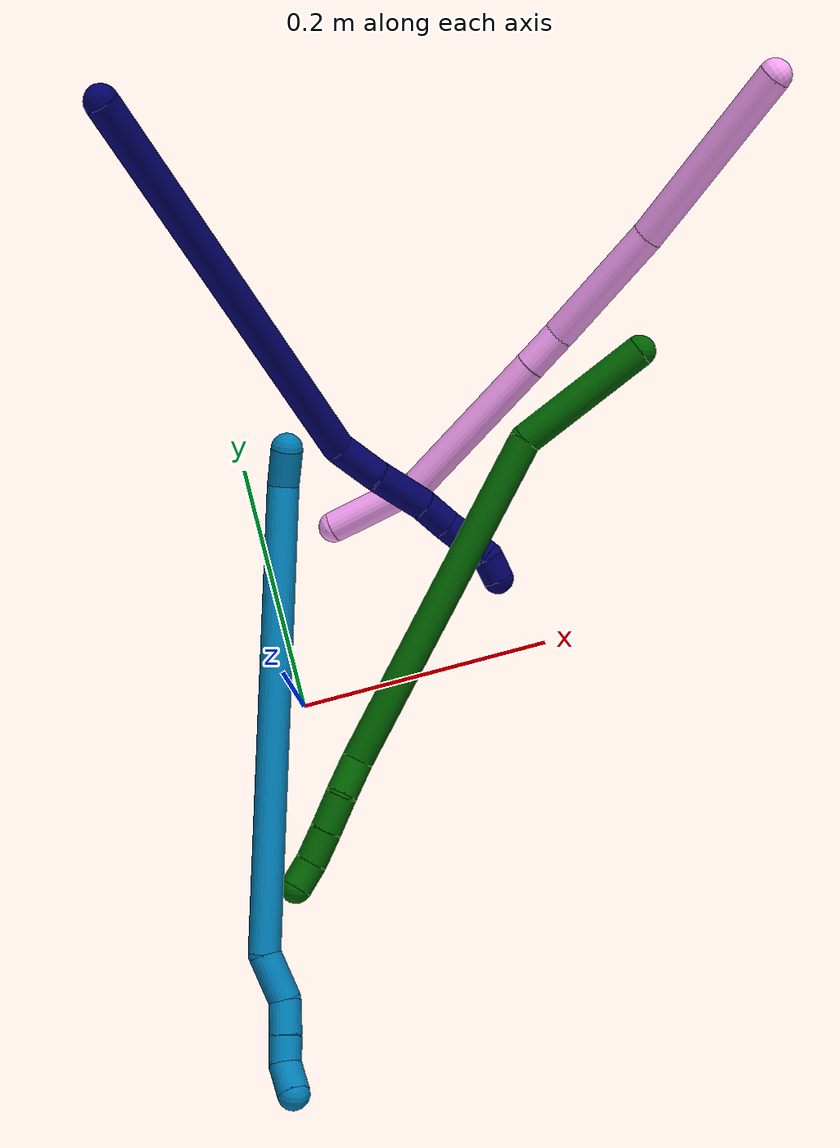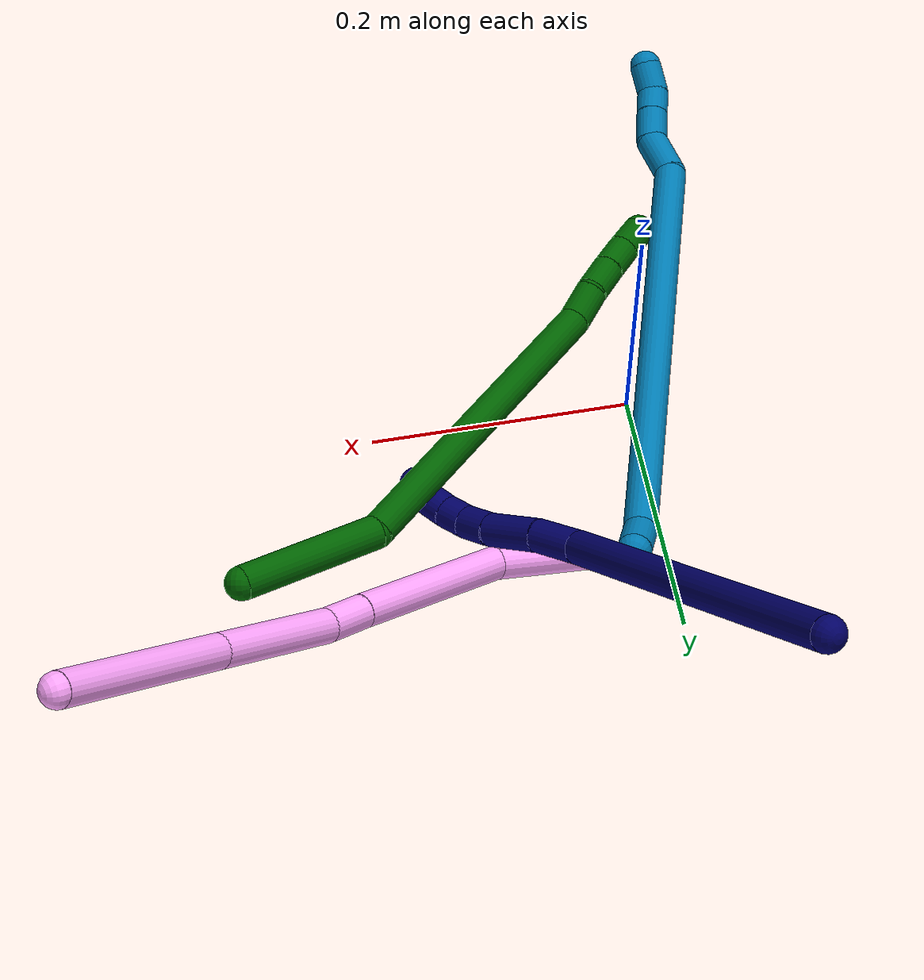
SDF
<sdf version="1.7">
 <world name="default">
  <model name="4">
   <static>0</static>
   <link name="4">
    <collision name="collision-cylinder-e_1_1_4">
     <pose>-0.022767 0.021019 -0.068619 -2.84436 -0.307202 1.60427</pose>
     <geometry><cylinder><radius>0.0125</radius><length>0.150582</length></cylinder></geometry>
     <surface>
      <friction><ode><mu>1.16</mu><mu2>1.16</mu2><slip1>0</slip1><slip2>0</slip2></ode></friction>
      <contact><ode><kp>1e+06</kp><kd>1</kd><max_vel>0</max_vel><min_depth>0.001</min_depth></ode></contact>
     </surface>
    </collision>
    <visual name="visual-cylinder-e_1_1_4">
     <pose>-0.022767 0.021019 -0.068619 -2.84436 -0.307202 1.60427</pose>
     <geometry><cylinder><radius>0.0125</radius><length>0.150582</length></cylinder></geometry>
     <material><ambient>1 0.65098 0.996078 1</ambient></material>
    </visual>
    <collision name="collision-cylinder-e_2_4_5">
     <pose>-0.059287 0.05369 -0.186551 -2.90955 -0.265015 1.70465</pose>
     <geometry><cylinder><radius>0.0125</radius><length>0.105007</length></cylinder></geometry>
     <surface>
      <friction><ode><mu>1.16</mu><mu2>1.16</mu2><slip1>0</slip1><slip2>0</slip2></ode></friction>
      <contact><ode><kp>1e+06</kp><kd>1</kd><max_vel>0</max_vel><min_depth>0.001</min_depth></ode></contact>
     </surface>
    </collision>
    <visual name="visual-cylinder-e_2_4_5">
     <pose>-0.059287 0.05369 -0.186551 -2.90955 -0.265015 1.70465</pose>
     <geometry><cylinder><radius>0.0125</radius><length>0.105007</length></cylinder></geometry>
     <material><ambient>1 0.65098 0.996078 1</ambient></material>
    </visual>
    <collision name="collision-cylinder-e_3_5_6">
     <pose>-0.074493 0.068548 -0.252208 -2.94792 -0.087101 0.843399</pose>
     <geometry><cylinder><radius>0.0125</radius><length>0.033439</length></cylinder></geometry>
     <surface>
      <friction><ode><mu>1.16</mu><mu2>1.16</mu2><slip1>0</slip1><slip2>0</slip2></ode></friction>
      <contact><ode><kp>1e+06</kp><kd>1</kd><max_vel>0</max_vel><min_depth>0.001</min_depth></ode></contact>
     </surface>
    </collision>
    <visual name="visual-cylinder-e_3_5_6">
     <pose>-0.074493 0.068548 -0.252208 -2.94792 -0.087101 0.843399</pose>
     <geometry><cylinder><radius>0.0125</radius><length>0.033439</length></cylinder></geometry>
     <material><ambient>1 0.65098 0.996078 1</ambient></material>
    </visual>
    <collision name="collision-cylinder-e_4_6_7">
     <pose>-0.084112 0.084422 -0.333823 -2.94989 -0.122189 1.13325</pose>
     <geometry><cylinder><radius>0.0125</radius><length>0.133976</length></cylinder></geometry>
     <surface>
      <friction><ode><mu>1.16</mu><mu2>1.16</mu2><slip1>0</slip1><slip2>0</slip2></ode></friction>
      <contact><ode><kp>1e+06</kp><kd>1</kd><max_vel>0</max_vel><min_depth>0.001</min_depth></ode></contact>
     </surface>
    </collision>
    <visual name="visual-cylinder-e_4_6_7">
     <pose>-0.084112 0.084422 -0.333823 -2.94989 -0.122189 1.13325</pose>
     <geometry><cylinder><radius>0.0125</radius><length>0.133976</length></cylinder></geometry>
     <material><ambient>1 0.65098 0.996078 1</ambient></material>
    </visual>
    <collision name="collision-cylinder-e_5_7_2">
     <pose>-0.096313 0.091155 -0.436917 2.98595 -0.105029 -1.18623</pose>
     <geometry><cylinder><radius>0.0125</radius><length>0.076996</length></cylinder></geometry>
     <surface>
      <friction><ode><mu>1.16</mu><mu2>1.16</mu2><slip1>0</slip1><slip2>0</slip2></ode></friction>
      <contact><ode><kp>1e+06</kp><kd>1</kd><max_vel>0</max_vel><min_depth>0.001</min_depth></ode></contact>
     </surface>
    </collision>
    <visual name="visual-cylinder-e_5_7_2">
     <pose>-0.096313 0.091155 -0.436917 2.98595 -0.105029 -1.18623</pose>
     <geometry><cylinder><radius>0.0125</radius><length>0.076996</length></cylinder></geometry>
     <material><ambient>1 0.65098 0.996078 1</ambient></material>
    </visual>
    <collision name="collision-sphere-2">
     <pose>-0.100349 0.085221 -0.47474 0 -0 0</pose>
     <geometry><sphere><radius>0.0125</radius></sphere></geometry>
     <surface>
      <friction><ode><mu>1.16</mu><mu2>1.16</mu2><slip1>0</slip1><slip2>0</slip2></ode></friction>
      <contact><ode><kp>1e+06</kp><kd>1</kd><max_vel>0</max_vel><min_depth>0.001</min_depth></ode></contact>
     </surface>
    </collision>
    <visual name="visual-sphere-2">
     <pose>-0.100349 0.085221 -0.47474 0 -0 0</pose>
     <geometry><sphere><radius>0.0125</radius></sphere></geometry>
     <material><ambient>1 0.65098 0.996078 1</ambient></material>
    </visual>
    <collision name="collision-sphere-7">
     <pose>-0.092277 0.09709 -0.399094 0 -0 0</pose>
     <geometry><sphere><radius>0.0125</radius></sphere></geometry>
     <surface>
      <friction><ode><mu>1.16</mu><mu2>1.16</mu2><slip1>0</slip1><slip2>0</slip2></ode></friction>
      <contact><ode><kp>1e+06</kp><kd>1</kd><max_vel>0</max_vel><min_depth>0.001</min_depth></ode></contact>
     </surface>
    </collision>
    <visual name="visual-sphere-7">
     <pose>-0.092277 0.09709 -0.399094 0 -0 0</pose>
     <geometry><sphere><radius>0.0125</radius></sphere></geometry>
     <material><ambient>1 0.65098 0.996078 1</ambient></material>
    </visual>
    <collision name="collision-sphere-6">
     <pose>-0.075948 0.071754 -0.268553 0 -0 0</pose>
     <geometry><sphere><radius>0.0125</radius></sphere></geometry>
     <surface>
      <friction><ode><mu>1.16</mu><mu2>1.16</mu2><slip1>0</slip1><slip2>0</slip2></ode></friction>
      <contact><ode><kp>1e+06</kp><kd>1</kd><max_vel>0</max_vel><min_depth>0.001</min_depth></ode></contact>
     </surface>
    </collision>
    <visual name="visual-sphere-6">
     <pose>-0.075948 0.071754 -0.268553 0 -0 0</pose>
     <geometry><sphere><radius>0.0125</radius></sphere></geometry>
     <material><ambient>1 0.65098 0.996078 1</ambient></material>
    </visual>
    <collision name="collision-sphere-5">
     <pose>-0.073039 0.065342 -0.235863 0 -0 0</pose>
     <geometry><sphere><radius>0.0125</radius></sphere></geometry>
     <surface>
      <friction><ode><mu>1.16</mu><mu2>1.16</mu2><slip1>0</slip1><slip2>0</slip2></ode></friction>
      <contact><ode><kp>1e+06</kp><kd>1</kd><max_vel>0</max_vel><min_depth>0.001</min_depth></ode></contact>
     </surface>
    </collision>
    <visual name="visual-sphere-5">
     <pose>-0.073039 0.065342 -0.235863 0 -0 0</pose>
     <geometry><sphere><radius>0.0125</radius></sphere></geometry>
     <material><ambient>1 0.65098 0.996078 1</ambient></material>
    </visual>
    <collision name="collision-sphere-1">
     <geometry><sphere><radius>0.0125</radius></sphere></geometry>
     <surface>
      <friction><ode><mu>1.16</mu><mu2>1.16</mu2><slip1>0</slip1><slip2>0</slip2></ode></friction>
      <contact><ode><kp>1e+06</kp><kd>1</kd><max_vel>0</max_vel><min_depth>0.001</min_depth></ode></contact>
     </surface>
    </collision>
    <visual name="visual-sphere-1">
     <geometry><sphere><radius>0.0125</radius></sphere></geometry>
     <material><ambient>1 0.65098 0.996078 1</ambient></material>
    </visual>
    <collision name="collision-sphere-4">
     <pose>-0.045535 0.042038 -0.137239 0 -0 0</pose>
     <geometry><sphere><radius>0.0125</radius></sphere></geometry>
     <surface>
      <friction><ode><mu>1.16</mu><mu2>1.16</mu2><slip1>0</slip1><slip2>0</slip2></ode></friction>
      <contact><ode><kp>1e+06</kp><kd>1</kd><max_vel>0</max_vel><min_depth>0.001</min_depth></ode></contact>
     </surface>
    </collision>
    <visual name="visual-sphere-4">
     <pose>-0.045535 0.042038 -0.137239 0 -0 0</pose>
     <geometry><sphere><radius>0.0125</radius></sphere></geometry>
     <material><ambient>1 0.65098 0.996078 1</ambient></material>
    </visual>
    <inertial>
     <pose>-0.061659 0.058848 -0.233441 0 -0 0</pose>
     <mass>0.5</mass>
     <inertia><ixx>0.000598</ixx><ixy>0</ixy><ixz>0</ixz><iyy>0.000485</iyy><iyz>0</iyz><izz>-3e-05</izz></inertia>
    </inertial>
   </link>
   <pose>0.445489 0.318256 0.255814 -0.868593 -1.14702 -1.89393</pose>
  </model>
  <model name="6">
   <static>0</static>
   <link name="6">
    <collision name="collision-cylinder-e_1_1_4">
     <pose>-0.011804 -0.03855 -0.037689 2.3449 -0.21555 -0.503274</pose>
     <geometry><cylinder><radius>0.0125</radius><length>0.11038</length></cylinder></geometry>
     <surface>
      <friction><ode><mu>1.16</mu><mu2>1.16</mu2><slip1>0</slip1><slip2>0</slip2></ode></friction>
      <contact><ode><kp>1e+06</kp><kd>1</kd><max_vel>0</max_vel><min_depth>0.001</min_depth></ode></contact>
     </surface>
    </collision>
    <visual name="visual-cylinder-e_1_1_4">
     <pose>-0.011804 -0.03855 -0.037689 2.3449 -0.21555 -0.503274</pose>
     <geometry><cylinder><radius>0.0125</radius><length>0.11038</length></cylinder></geometry>
     <material><ambient>0 0.392157 0.003922 1</ambient></material>
    </visual>
    <collision name="collision-cylinder-e_2_4_5">
     <pose>-0.088472 -0.191096 -0.124629 1.97862 -0.481355 -0.714736</pose>
     <geometry><cylinder><radius>0.0125</radius><length>0.2802</length></cylinder></geometry>
     <surface>
      <friction><ode><mu>1.16</mu><mu2>1.16</mu2><slip1>0</slip1><slip2>0</slip2></ode></friction>
      <contact><ode><kp>1e+06</kp><kd>1</kd><max_vel>0</max_vel><min_depth>0.001</min_depth></ode></contact>
     </surface>
    </collision>
    <visual name="visual-cylinder-e_2_4_5">
     <pose>-0.088472 -0.191096 -0.124629 1.97862 -0.481355 -0.714736</pose>
     <geometry><cylinder><radius>0.0125</radius><length>0.2802</length></cylinder></geometry>
     <material><ambient>0 0.392157 0.003922 1</ambient></material>
    </visual>
    <collision name="collision-cylinder-e_3_5_6">
     <pose>-0.163983 -0.314192 -0.179346 2.11172 -0.786889 -1.26579</pose>
     <geometry><cylinder><radius>0.0125</radius><length>0.03007</length></cylinder></geometry>
     <surface>
      <friction><ode><mu>1.16</mu><mu2>1.16</mu2><slip1>0</slip1><slip2>0</slip2></ode></friction>
      <contact><ode><kp>1e+06</kp><kd>1</kd><max_vel>0</max_vel><min_depth>0.001</min_depth></ode></contact>
     </surface>
    </collision>
    <visual name="visual-cylinder-e_3_5_6">
     <pose>-0.163983 -0.314192 -0.179346 2.11172 -0.786889 -1.26579</pose>
     <geometry><cylinder><radius>0.0125</radius><length>0.03007</length></cylinder></geometry>
     <material><ambient>0 0.392157 0.003922 1</ambient></material>
    </visual>
    <collision name="collision-cylinder-e_4_6_7">
     <pose>-0.182703 -0.334806 -0.189257 1.93919 -0.579247 -0.819725</pose>
     <geometry><cylinder><radius>0.0125</radius><length>0.029495</length></cylinder></geometry>
     <surface>
      <friction><ode><mu>1.16</mu><mu2>1.16</mu2><slip1>0</slip1><slip2>0</slip2></ode></friction>
      <contact><ode><kp>1e+06</kp><kd>1</kd><max_vel>0</max_vel><min_depth>0.001</min_depth></ode></contact>
     </surface>
    </collision>
    <visual name="visual-cylinder-e_4_6_7">
     <pose>-0.182703 -0.334806 -0.189257 1.93919 -0.579247 -0.819725</pose>
     <geometry><cylinder><radius>0.0125</radius><length>0.029495</length></cylinder></geometry>
     <material><ambient>0 0.392157 0.003922 1</ambient></material>
    </visual>
    <collision name="collision-cylinder-e_5_7_8">
     <pose>-0.198038 -0.357061 -0.19805 1.95546 -0.559821 -0.806268</pose>
     <geometry><cylinder><radius>0.0125</radius><length>0.027351</length></cylinder></geometry>
     <surface>
      <friction><ode><mu>1.16</mu><mu2>1.16</mu2><slip1>0</slip1><slip2>0</slip2></ode></friction>
      <contact><ode><kp>1e+06</kp><kd>1</kd><max_vel>0</max_vel><min_depth>0.001</min_depth></ode></contact>
     </surface>
    </collision>
    <visual name="visual-cylinder-e_5_7_8">
     <pose>-0.198038 -0.357061 -0.19805 1.95546 -0.559821 -0.806268</pose>
     <geometry><cylinder><radius>0.0125</radius><length>0.027351</length></cylinder></geometry>
     <material><ambient>0 0.392157 0.003922 1</ambient></material>
    </visual>
    <collision name="collision-cylinder-e_6_8_2">
     <pose>-0.212032 -0.375293 -0.207416 2.16098 -0.641353 -1.11322</pose>
     <geometry><cylinder><radius>0.0125</radius><length>0.022504</length></cylinder></geometry>
     <surface>
      <friction><ode><mu>1.16</mu><mu2>1.16</mu2><slip1>0</slip1><slip2>0</slip2></ode></friction>
      <contact><ode><kp>1e+06</kp><kd>1</kd><max_vel>0</max_vel><min_depth>0.001</min_depth></ode></contact>
     </surface>
    </collision>
    <visual name="visual-cylinder-e_6_8_2">
     <pose>-0.212032 -0.375293 -0.207416 2.16098 -0.641353 -1.11322</pose>
     <geometry><cylinder><radius>0.0125</radius><length>0.022504</length></cylinder></geometry>
     <material><ambient>0 0.392157 0.003922 1</ambient></material>
    </visual>
    <collision name="collision-sphere-2">
     <pose>-0.218764 -0.382784 -0.212434 0 -0 0</pose>
     <geometry><sphere><radius>0.0125</radius></sphere></geometry>
     <surface>
      <friction><ode><mu>1.16</mu><mu2>1.16</mu2><slip1>0</slip1><slip2>0</slip2></ode></friction>
      <contact><ode><kp>1e+06</kp><kd>1</kd><max_vel>0</max_vel><min_depth>0.001</min_depth></ode></contact>
     </surface>
    </collision>
    <visual name="visual-sphere-2">
     <pose>-0.218764 -0.382784 -0.212434 0 -0 0</pose>
     <geometry><sphere><radius>0.0125</radius></sphere></geometry>
     <material><ambient>0 0.392157 0.003922 1</ambient></material>
    </visual>
    <collision name="collision-sphere-4">
     <pose>-0.023609 -0.077101 -0.075378 0 -0 0</pose>
     <geometry><sphere><radius>0.0125</radius></sphere></geometry>
     <surface>
      <friction><ode><mu>1.16</mu><mu2>1.16</mu2><slip1>0</slip1><slip2>0</slip2></ode></friction>
      <contact><ode><kp>1e+06</kp><kd>1</kd><max_vel>0</max_vel><min_depth>0.001</min_depth></ode></contact>
     </surface>
    </collision>
    <visual name="visual-sphere-4">
     <pose>-0.023609 -0.077101 -0.075378 0 -0 0</pose>
     <geometry><sphere><radius>0.0125</radius></sphere></geometry>
     <material><ambient>0 0.392157 0.003922 1</ambient></material>
    </visual>
    <collision name="collision-sphere-1">
     <geometry><sphere><radius>0.0125</radius></sphere></geometry>
     <surface>
      <friction><ode><mu>1.16</mu><mu2>1.16</mu2><slip1>0</slip1><slip2>0</slip2></ode></friction>
      <contact><ode><kp>1e+06</kp><kd>1</kd><max_vel>0</max_vel><min_depth>0.001</min_depth></ode></contact>
     </surface>
    </collision>
    <visual name="visual-sphere-1">
     <geometry><sphere><radius>0.0125</radius></sphere></geometry>
     <material><ambient>0 0.392157 0.003922 1</ambient></material>
    </visual>
    <collision name="collision-sphere-8">
     <pose>-0.2053 -0.367802 -0.202398 0 -0 0</pose>
     <geometry><sphere><radius>0.0125</radius></sphere></geometry>
     <surface>
      <friction><ode><mu>1.16</mu><mu2>1.16</mu2><slip1>0</slip1><slip2>0</slip2></ode></friction>
      <contact><ode><kp>1e+06</kp><kd>1</kd><max_vel>0</max_vel><min_depth>0.001</min_depth></ode></contact>
     </surface>
    </collision>
    <visual name="visual-sphere-8">
     <pose>-0.2053 -0.367802 -0.202398 0 -0 0</pose>
     <geometry><sphere><radius>0.0125</radius></sphere></geometry>
     <material><ambient>0 0.392157 0.003922 1</ambient></material>
    </visual>
    <collision name="collision-sphere-5">
     <pose>-0.153336 -0.305092 -0.17388 0 -0 0</pose>
     <geometry><sphere><radius>0.0125</radius></sphere></geometry>
     <surface>
      <friction><ode><mu>1.16</mu><mu2>1.16</mu2><slip1>0</slip1><slip2>0</slip2></ode></friction>
      <contact><ode><kp>1e+06</kp><kd>1</kd><max_vel>0</max_vel><min_depth>0.001</min_depth></ode></contact>
     </surface>
    </collision>
    <visual name="visual-sphere-5">
     <pose>-0.153336 -0.305092 -0.17388 0 -0 0</pose>
     <geometry><sphere><radius>0.0125</radius></sphere></geometry>
     <material><ambient>0 0.392157 0.003922 1</ambient></material>
    </visual>
    <collision name="collision-sphere-6">
     <pose>-0.17463 -0.323292 -0.184812 0 -0 0</pose>
     <geometry><sphere><radius>0.0125</radius></sphere></geometry>
     <surface>
      <friction><ode><mu>1.16</mu><mu2>1.16</mu2><slip1>0</slip1><slip2>0</slip2></ode></friction>
      <contact><ode><kp>1e+06</kp><kd>1</kd><max_vel>0</max_vel><min_depth>0.001</min_depth></ode></contact>
     </surface>
    </collision>
    <visual name="visual-sphere-6">
     <pose>-0.17463 -0.323292 -0.184812 0 -0 0</pose>
     <geometry><sphere><radius>0.0125</radius></sphere></geometry>
     <material><ambient>0 0.392157 0.003922 1</ambient></material>
    </visual>
    <collision name="collision-sphere-7">
     <pose>-0.190775 -0.34632 -0.193701 0 -0 0</pose>
     <geometry><sphere><radius>0.0125</radius></sphere></geometry>
     <surface>
      <friction><ode><mu>1.16</mu><mu2>1.16</mu2><slip1>0</slip1><slip2>0</slip2></ode></friction>
      <contact><ode><kp>1e+06</kp><kd>1</kd><max_vel>0</max_vel><min_depth>0.001</min_depth></ode></contact>
     </surface>
    </collision>
    <visual name="visual-sphere-7">
     <pose>-0.190775 -0.34632 -0.193701 0 -0 0</pose>
     <geometry><sphere><radius>0.0125</radius></sphere></geometry>
     <material><ambient>0 0.392157 0.003922 1</ambient></material>
    </visual>
    <inertial>
     <pose>-0.093202 -0.19067 -0.120282 0 -0 0</pose>
     <mass>0.5</mass>
     <inertia>
      <ixx>0.000188</ixx>
      <ixy>0</ixy>
      <ixz>0</ixz>
      <iyy>-0.001262</iyy>
      <iyz>0</iyz>
      <izz>0.002459</izz>
     </inertia>
    </inertial>
   </link>
   <pose>0.319291 0.18223 0.1238 1.88042 0.701354 1.45619</pose>
  </model>
  <model name="7">
   <static>0</static>
   <link name="7">
    <collision name="collision-cylinder-e_1_1_4">
     <pose>0.010191 0.014832 -0.162413 -3.05052 0.062406 -1.20118</pose>
     <geometry><cylinder><radius>0.0125</radius><length>0.326813</length></cylinder></geometry>
     <surface>
      <friction><ode><mu>1.16</mu><mu2>1.16</mu2><slip1>0</slip1><slip2>0</slip2></ode></friction>
      <contact><ode><kp>1e+06</kp><kd>1</kd><max_vel>0</max_vel><min_depth>0.001</min_depth></ode></contact>
     </surface>
    </collision>
    <visual name="visual-cylinder-e_1_1_4">
     <pose>0.010191 0.014832 -0.162413 -3.05052 0.062406 -1.20118</pose>
     <geometry><cylinder><radius>0.0125</radius><length>0.326813</length></cylinder></geometry>
     <material><ambient>0.003922 0 0.403922 1</ambient></material>
    </visual>
    <collision name="collision-cylinder-e_2_4_5">
     <pose>0.022316 0.023924 -0.343249 2.83957 0.099904 0.634862</pose>
     <geometry><cylinder><radius>0.0125</radius><length>0.038786</length></cylinder></geometry>
     <surface>
      <friction><ode><mu>1.16</mu><mu2>1.16</mu2><slip1>0</slip1><slip2>0</slip2></ode></friction>
      <contact><ode><kp>1e+06</kp><kd>1</kd><max_vel>0</max_vel><min_depth>0.001</min_depth></ode></contact>
     </surface>
    </collision>
    <visual name="visual-cylinder-e_2_4_5">
     <pose>0.022316 0.023924 -0.343249 2.83957 0.099904 0.634862</pose>
     <geometry><cylinder><radius>0.0125</radius><length>0.038786</length></cylinder></geometry>
     <material><ambient>0.003922 0 0.403922 1</ambient></material>
    </visual>
    <collision name="collision-cylinder-e_3_5_6">
     <pose>0.029366 0.012216 -0.383271 2.872 0.224433 1.38664</pose>
     <geometry><cylinder><radius>0.0125</radius><length>0.045971</length></cylinder></geometry>
     <surface>
      <friction><ode><mu>1.16</mu><mu2>1.16</mu2><slip1>0</slip1><slip2>0</slip2></ode></friction>
      <contact><ode><kp>1e+06</kp><kd>1</kd><max_vel>0</max_vel><min_depth>0.001</min_depth></ode></contact>
     </surface>
    </collision>
    <visual name="visual-cylinder-e_3_5_6">
     <pose>0.029366 0.012216 -0.383271 2.872 0.224433 1.38664</pose>
     <geometry><cylinder><radius>0.0125</radius><length>0.045971</length></cylinder></geometry>
     <material><ambient>0.003922 0 0.403922 1</ambient></material>
    </visual>
    <collision name="collision-cylinder-e_4_6_7">
     <pose>0.035574 0.003378 -0.417913 2.92502 0.081669 0.718999</pose>
     <geometry><cylinder><radius>0.0125</radius><length>0.026798</length></cylinder></geometry>
     <surface>
      <friction><ode><mu>1.16</mu><mu2>1.16</mu2><slip1>0</slip1><slip2>0</slip2></ode></friction>
      <contact><ode><kp>1e+06</kp><kd>1</kd><max_vel>0</max_vel><min_depth>0.001</min_depth></ode></contact>
     </surface>
    </collision>
    <visual name="visual-cylinder-e_4_6_7">
     <pose>0.035574 0.003378 -0.417913 2.92502 0.081669 0.718999</pose>
     <geometry><cylinder><radius>0.0125</radius><length>0.026798</length></cylinder></geometry>
     <material><ambient>0.003922 0 0.403922 1</ambient></material>
    </visual>
    <collision name="collision-cylinder-e_5_7_8">
     <pose>0.036031 -0.003664 -0.440342 2.72332 -0.061846 -0.289452</pose>
     <geometry><cylinder><radius>0.0125</radius><length>0.020585</length></cylinder></geometry>
     <surface>
      <friction><ode><mu>1.16</mu><mu2>1.16</mu2><slip1>0</slip1><slip2>0</slip2></ode></friction>
      <contact><ode><kp>1e+06</kp><kd>1</kd><max_vel>0</max_vel><min_depth>0.001</min_depth></ode></contact>
     </surface>
    </collision>
    <visual name="visual-cylinder-e_5_7_8">
     <pose>0.036031 -0.003664 -0.440342 2.72332 -0.061846 -0.289452</pose>
     <geometry><cylinder><radius>0.0125</radius><length>0.020585</length></cylinder></geometry>
     <material><ambient>0.003922 0 0.403922 1</ambient></material>
    </visual>
    <collision name="collision-cylinder-e_6_8_9">
     <pose>0.033442 -0.013303 -0.458432 2.58077 -0.187798 -0.632079</pose>
     <geometry><cylinder><radius>0.0125</radius><length>0.020922</length></cylinder></geometry>
     <surface>
      <friction><ode><mu>1.16</mu><mu2>1.16</mu2><slip1>0</slip1><slip2>0</slip2></ode></friction>
      <contact><ode><kp>1e+06</kp><kd>1</kd><max_vel>0</max_vel><min_depth>0.001</min_depth></ode></contact>
     </surface>
    </collision>
    <visual name="visual-cylinder-e_6_8_9">
     <pose>0.033442 -0.013303 -0.458432 2.58077 -0.187798 -0.632079</pose>
     <geometry><cylinder><radius>0.0125</radius><length>0.020922</length></cylinder></geometry>
     <material><ambient>0.003922 0 0.403922 1</ambient></material>
    </visual>
    <collision name="collision-cylinder-e_7_9_2">
     <pose>0.028628 -0.019079 -0.476777 3.10951 -0.288317 -2.92146</pose>
     <geometry><cylinder><radius>0.0125</radius><length>0.020125</length></cylinder></geometry>
     <surface>
      <friction><ode><mu>1.16</mu><mu2>1.16</mu2><slip1>0</slip1><slip2>0</slip2></ode></friction>
      <contact><ode><kp>1e+06</kp><kd>1</kd><max_vel>0</max_vel><min_depth>0.001</min_depth></ode></contact>
     </surface>
    </collision>
    <visual name="visual-cylinder-e_7_9_2">
     <pose>0.028628 -0.019079 -0.476777 3.10951 -0.288317 -2.92146</pose>
     <geometry><cylinder><radius>0.0125</radius><length>0.020125</length></cylinder></geometry>
     <material><ambient>0.003922 0 0.403922 1</ambient></material>
    </visual>
    <collision name="collision-sphere-2">
     <pose>0.025767 -0.019388 -0.486419 0 -0 0</pose>
     <geometry><sphere><radius>0.0125</radius></sphere></geometry>
     <surface>
      <friction><ode><mu>1.16</mu><mu2>1.16</mu2><slip1>0</slip1><slip2>0</slip2></ode></friction>
      <contact><ode><kp>1e+06</kp><kd>1</kd><max_vel>0</max_vel><min_depth>0.001</min_depth></ode></contact>
     </surface>
    </collision>
    <visual name="visual-sphere-2">
     <pose>0.025767 -0.019388 -0.486419 0 -0 0</pose>
     <geometry><sphere><radius>0.0125</radius></sphere></geometry>
     <material><ambient>0.003922 0 0.403922 1</ambient></material>
    </visual>
    <collision name="collision-sphere-9">
     <pose>0.031489 -0.018769 -0.467135 0 -0 0</pose>
     <geometry><sphere><radius>0.0125</radius></sphere></geometry>
     <surface>
      <friction><ode><mu>1.16</mu><mu2>1.16</mu2><slip1>0</slip1><slip2>0</slip2></ode></friction>
      <contact><ode><kp>1e+06</kp><kd>1</kd><max_vel>0</max_vel><min_depth>0.001</min_depth></ode></contact>
     </surface>
    </collision>
    <visual name="visual-sphere-9">
     <pose>0.031489 -0.018769 -0.467135 0 -0 0</pose>
     <geometry><sphere><radius>0.0125</radius></sphere></geometry>
     <material><ambient>0.003922 0 0.403922 1</ambient></material>
    </visual>
    <collision name="collision-sphere-4">
     <pose>0.020382 0.029664 -0.324826 0 -0 0</pose>
     <geometry><sphere><radius>0.0125</radius></sphere></geometry>
     <surface>
      <friction><ode><mu>1.16</mu><mu2>1.16</mu2><slip1>0</slip1><slip2>0</slip2></ode></friction>
      <contact><ode><kp>1e+06</kp><kd>1</kd><max_vel>0</max_vel><min_depth>0.001</min_depth></ode></contact>
     </surface>
    </collision>
    <visual name="visual-sphere-4">
     <pose>0.020382 0.029664 -0.324826 0 -0 0</pose>
     <geometry><sphere><radius>0.0125</radius></sphere></geometry>
     <material><ambient>0.003922 0 0.403922 1</ambient></material>
    </visual>
    <collision name="collision-sphere-1">
     <geometry><sphere><radius>0.0125</radius></sphere></geometry>
     <surface>
      <friction><ode><mu>1.16</mu><mu2>1.16</mu2><slip1>0</slip1><slip2>0</slip2></ode></friction>
      <contact><ode><kp>1e+06</kp><kd>1</kd><max_vel>0</max_vel><min_depth>0.001</min_depth></ode></contact>
     </surface>
    </collision>
    <visual name="visual-sphere-1">
     <geometry><sphere><radius>0.0125</radius></sphere></geometry>
     <material><ambient>0.003922 0 0.403922 1</ambient></material>
    </visual>
    <collision name="collision-sphere-8">
     <pose>0.035395 -0.007837 -0.449729 0 -0 0</pose>
     <geometry><sphere><radius>0.0125</radius></sphere></geometry>
     <surface>
      <friction><ode><mu>1.16</mu><mu2>1.16</mu2><slip1>0</slip1><slip2>0</slip2></ode></friction>
      <contact><ode><kp>1e+06</kp><kd>1</kd><max_vel>0</max_vel><min_depth>0.001</min_depth></ode></contact>
     </surface>
    </collision>
    <visual name="visual-sphere-8">
     <pose>0.035395 -0.007837 -0.449729 0 -0 0</pose>
     <geometry><sphere><radius>0.0125</radius></sphere></geometry>
     <material><ambient>0.003922 0 0.403922 1</ambient></material>
    </visual>
    <collision name="collision-sphere-5">
     <pose>0.02425 0.018184 -0.361672 0 -0 0</pose>
     <geometry><sphere><radius>0.0125</radius></sphere></geometry>
     <surface>
      <friction><ode><mu>1.16</mu><mu2>1.16</mu2><slip1>0</slip1><slip2>0</slip2></ode></friction>
      <contact><ode><kp>1e+06</kp><kd>1</kd><max_vel>0</max_vel><min_depth>0.001</min_depth></ode></contact>
     </surface>
    </collision>
    <visual name="visual-sphere-5">
     <pose>0.02425 0.018184 -0.361672 0 -0 0</pose>
     <geometry><sphere><radius>0.0125</radius></sphere></geometry>
     <material><ambient>0.003922 0 0.403922 1</ambient></material>
    </visual>
    <collision name="collision-sphere-6">
     <pose>0.034481 0.006248 -0.404871 0 -0 0</pose>
     <geometry><sphere><radius>0.0125</radius></sphere></geometry>
     <surface>
      <friction><ode><mu>1.16</mu><mu2>1.16</mu2><slip1>0</slip1><slip2>0</slip2></ode></friction>
      <contact><ode><kp>1e+06</kp><kd>1</kd><max_vel>0</max_vel><min_depth>0.001</min_depth></ode></contact>
     </surface>
    </collision>
    <visual name="visual-sphere-6">
     <pose>0.034481 0.006248 -0.404871 0 -0 0</pose>
     <geometry><sphere><radius>0.0125</radius></sphere></geometry>
     <material><ambient>0.003922 0 0.403922 1</ambient></material>
    </visual>
    <collision name="collision-sphere-7">
     <pose>0.036667 0.000508 -0.430955 0 -0 0</pose>
     <geometry><sphere><radius>0.0125</radius></sphere></geometry>
     <surface>
      <friction><ode><mu>1.16</mu><mu2>1.16</mu2><slip1>0</slip1><slip2>0</slip2></ode></friction>
      <contact><ode><kp>1e+06</kp><kd>1</kd><max_vel>0</max_vel><min_depth>0.001</min_depth></ode></contact>
     </surface>
    </collision>
    <visual name="visual-sphere-7">
     <pose>0.036667 0.000508 -0.430955 0 -0 0</pose>
     <geometry><sphere><radius>0.0125</radius></sphere></geometry>
     <material><ambient>0.003922 0 0.403922 1</ambient></material>
    </visual>
    <inertial>
     <pose>0.017034 0.011379 -0.246922 0 -0 0</pose>
     <mass>0.5</mass>
     <inertia>
      <ixx>-0.00164</ixx>
      <ixy>0</ixy>
      <ixz>0</ixz>
      <iyy>-0.003752</iyy>
      <iyz>0</iyz>
      <izz>-0.000481</izz>
     </inertia>
    </inertial>
   </link>
   <pose>-0.019214 0.394994 0.313899 -0.781427 0.575831 0.943368</pose>
  </model>
  <model name="9">
   <static>0</static>
   <link name="9">
    <collision name="collision-cylinder-e_1_1_4">
     <pose>7.9e-05 0.000102 -0.014999 -3.13482 0.005255 -1.31982</pose>
     <geometry><cylinder><radius>0.0125</radius><length>0.029999</length></cylinder></geometry>
     <surface>
      <friction><ode><mu>1.16</mu><mu2>1.16</mu2><slip1>0</slip1><slip2>0</slip2></ode></friction>
      <contact><ode><kp>1e+06</kp><kd>1</kd><max_vel>0</max_vel><min_depth>0.001</min_depth></ode></contact>
     </surface>
    </collision>
    <visual name="visual-cylinder-e_1_1_4">
     <pose>7.9e-05 0.000102 -0.014999 -3.13482 0.005255 -1.31982</pose>
     <geometry><cylinder><radius>0.0125</radius><length>0.029999</length></cylinder></geometry>
     <material><ambient>0 0.490196 0.709804 1</ambient></material>
    </visual>
    <collision name="collision-cylinder-e_2_4_5">
     <pose>0.021471 -0.073641 -0.192643 2.7154 0.118757 0.536247</pose>
     <geometry><cylinder><radius>0.0125</radius><length>0.359781</length></cylinder></geometry>
     <surface>
      <friction><ode><mu>1.16</mu><mu2>1.16</mu2><slip1>0</slip1><slip2>0</slip2></ode></friction>
      <contact><ode><kp>1e+06</kp><kd>1</kd><max_vel>0</max_vel><min_depth>0.001</min_depth></ode></contact>
     </surface>
    </collision>
    <visual name="visual-cylinder-e_2_4_5">
     <pose>0.021471 -0.073641 -0.192643 2.7154 0.118757 0.536247</pose>
     <geometry><cylinder><radius>0.0125</radius><length>0.359781</length></cylinder></geometry>
     <material><ambient>0 0.490196 0.709804 1</ambient></material>
    </visual>
    <collision name="collision-cylinder-e_3_5_6">
     <pose>0.053268 -0.153972 -0.369965 2.72545 0.57869 1.90786</pose>
     <geometry><cylinder><radius>0.0125</radius><length>0.038337</length></cylinder></geometry>
     <surface>
      <friction><ode><mu>1.16</mu><mu2>1.16</mu2><slip1>0</slip1><slip2>0</slip2></ode></friction>
      <contact><ode><kp>1e+06</kp><kd>1</kd><max_vel>0</max_vel><min_depth>0.001</min_depth></ode></contact>
     </surface>
    </collision>
    <visual name="visual-cylinder-e_3_5_6">
     <pose>0.053268 -0.153972 -0.369965 2.72545 0.57869 1.90786</pose>
     <geometry><cylinder><radius>0.0125</radius><length>0.038337</length></cylinder></geometry>
     <material><ambient>0 0.490196 0.709804 1</ambient></material>
    </visual>
    <collision name="collision-cylinder-e_4_6_7">
     <pose>0.066283 -0.168188 -0.395224 2.51067 0.190835 0.570527</pose>
     <geometry><cylinder><radius>0.0125</radius><length>0.026691</length></cylinder></geometry>
     <surface>
      <friction><ode><mu>1.16</mu><mu2>1.16</mu2><slip1>0</slip1><slip2>0</slip2></ode></friction>
      <contact><ode><kp>1e+06</kp><kd>1</kd><max_vel>0</max_vel><min_depth>0.001</min_depth></ode></contact>
     </surface>
    </collision>
    <visual name="visual-cylinder-e_4_6_7">
     <pose>0.066283 -0.168188 -0.395224 2.51067 0.190835 0.570527</pose>
     <geometry><cylinder><radius>0.0125</radius><length>0.026691</length></cylinder></geometry>
     <material><ambient>0 0.490196 0.709804 1</ambient></material>
    </visual>
    <collision name="collision-cylinder-e_5_7_8">
     <pose>0.070489 -0.181848 -0.414392 2.53726 0.159176 0.500983</pose>
     <geometry><cylinder><radius>0.0125</radius><length>0.021138</length></cylinder></geometry>
     <surface>
      <friction><ode><mu>1.16</mu><mu2>1.16</mu2><slip1>0</slip1><slip2>0</slip2></ode></friction>
      <contact><ode><kp>1e+06</kp><kd>1</kd><max_vel>0</max_vel><min_depth>0.001</min_depth></ode></contact>
     </surface>
    </collision>
    <visual name="visual-cylinder-e_5_7_8">
     <pose>0.070489 -0.181848 -0.414392 2.53726 0.159176 0.500983</pose>
     <geometry><cylinder><radius>0.0125</radius><length>0.021138</length></cylinder></geometry>
     <material><ambient>0 0.490196 0.709804 1</ambient></material>
    </visual>
    <collision name="collision-cylinder-e_6_8_2">
     <pose>0.07741 -0.196622 -0.429217 2.18506 0.451257 0.833653</pose>
     <geometry><cylinder><radius>0.0125</radius><length>0.024054</length></cylinder></geometry>
     <surface>
      <friction><ode><mu>1.16</mu><mu2>1.16</mu2><slip1>0</slip1><slip2>0</slip2></ode></friction>
      <contact><ode><kp>1e+06</kp><kd>1</kd><max_vel>0</max_vel><min_depth>0.001</min_depth></ode></contact>
     </surface>
    </collision>
    <visual name="visual-cylinder-e_6_8_2">
     <pose>0.07741 -0.196622 -0.429217 2.18506 0.451257 0.833653</pose>
     <geometry><cylinder><radius>0.0125</radius><length>0.024054</length></cylinder></geometry>
     <material><ambient>0 0.490196 0.709804 1</ambient></material>
    </visual>
    <collision name="collision-sphere-2">
     <pose>0.082655 -0.205467 -0.435455 0 -0 0</pose>
     <geometry><sphere><radius>0.0125</radius></sphere></geometry>
     <surface>
      <friction><ode><mu>1.16</mu><mu2>1.16</mu2><slip1>0</slip1><slip2>0</slip2></ode></friction>
      <contact><ode><kp>1e+06</kp><kd>1</kd><max_vel>0</max_vel><min_depth>0.001</min_depth></ode></contact>
     </surface>
    </collision>
    <visual name="visual-sphere-2">
     <pose>0.082655 -0.205467 -0.435455 0 -0 0</pose>
     <geometry><sphere><radius>0.0125</radius></sphere></geometry>
     <material><ambient>0 0.490196 0.709804 1</ambient></material>
    </visual>
    <collision name="collision-sphere-4">
     <pose>0.000158 0.000203 -0.029998 0 -0 0</pose>
     <geometry><sphere><radius>0.0125</radius></sphere></geometry>
     <surface>
      <friction><ode><mu>1.16</mu><mu2>1.16</mu2><slip1>0</slip1><slip2>0</slip2></ode></friction>
      <contact><ode><kp>1e+06</kp><kd>1</kd><max_vel>0</max_vel><min_depth>0.001</min_depth></ode></contact>
     </surface>
    </collision>
    <visual name="visual-sphere-4">
     <pose>0.000158 0.000203 -0.029998 0 -0 0</pose>
     <geometry><sphere><radius>0.0125</radius></sphere></geometry>
     <material><ambient>0 0.490196 0.709804 1</ambient></material>
    </visual>
    <collision name="collision-sphere-1">
     <geometry><sphere><radius>0.0125</radius></sphere></geometry>
     <surface>
      <friction><ode><mu>1.16</mu><mu2>1.16</mu2><slip1>0</slip1><slip2>0</slip2></ode></friction>
      <contact><ode><kp>1e+06</kp><kd>1</kd><max_vel>0</max_vel><min_depth>0.001</min_depth></ode></contact>
     </surface>
    </collision>
    <visual name="visual-sphere-1">
     <geometry><sphere><radius>0.0125</radius></sphere></geometry>
     <material><ambient>0 0.490196 0.709804 1</ambient></material>
    </visual>
    <collision name="collision-sphere-8">
     <pose>0.072165 -0.187777 -0.422979 0 -0 0</pose>
     <geometry><sphere><radius>0.0125</radius></sphere></geometry>
     <surface>
      <friction><ode><mu>1.16</mu><mu2>1.16</mu2><slip1>0</slip1><slip2>0</slip2></ode></friction>
      <contact><ode><kp>1e+06</kp><kd>1</kd><max_vel>0</max_vel><min_depth>0.001</min_depth></ode></contact>
     </surface>
    </collision>
    <visual name="visual-sphere-8">
     <pose>0.072165 -0.187777 -0.422979 0 -0 0</pose>
     <geometry><sphere><radius>0.0125</radius></sphere></geometry>
     <material><ambient>0 0.490196 0.709804 1</ambient></material>
    </visual>
    <collision name="collision-sphere-5">
     <pose>0.042784 -0.147485 -0.355287 0 -0 0</pose>
     <geometry><sphere><radius>0.0125</radius></sphere></geometry>
     <surface>
      <friction><ode><mu>1.16</mu><mu2>1.16</mu2><slip1>0</slip1><slip2>0</slip2></ode></friction>
      <contact><ode><kp>1e+06</kp><kd>1</kd><max_vel>0</max_vel><min_depth>0.001</min_depth></ode></contact>
     </surface>
    </collision>
    <visual name="visual-sphere-5">
     <pose>0.042784 -0.147485 -0.355287 0 -0 0</pose>
     <geometry><sphere><radius>0.0125</radius></sphere></geometry>
     <material><ambient>0 0.490196 0.709804 1</ambient></material>
    </visual>
    <collision name="collision-sphere-6">
     <pose>0.063751 -0.160459 -0.384643 0 -0 0</pose>
     <geometry><sphere><radius>0.0125</radius></sphere></geometry>
     <surface>
      <friction><ode><mu>1.16</mu><mu2>1.16</mu2><slip1>0</slip1><slip2>0</slip2></ode></friction>
      <contact><ode><kp>1e+06</kp><kd>1</kd><max_vel>0</max_vel><min_depth>0.001</min_depth></ode></contact>
     </surface>
    </collision>
    <visual name="visual-sphere-6">
     <pose>0.063751 -0.160459 -0.384643 0 -0 0</pose>
     <geometry><sphere><radius>0.0125</radius></sphere></geometry>
     <material><ambient>0 0.490196 0.709804 1</ambient></material>
    </visual>
    <collision name="collision-sphere-7">
     <pose>0.068814 -0.175918 -0.405804 0 -0 0</pose>
     <geometry><sphere><radius>0.0125</radius></sphere></geometry>
     <surface>
      <friction><ode><mu>1.16</mu><mu2>1.16</mu2><slip1>0</slip1><slip2>0</slip2></ode></friction>
      <contact><ode><kp>1e+06</kp><kd>1</kd><max_vel>0</max_vel><min_depth>0.001</min_depth></ode></contact>
     </surface>
    </collision>
    <visual name="visual-sphere-7">
     <pose>0.068814 -0.175918 -0.405804 0 -0 0</pose>
     <geometry><sphere><radius>0.0125</radius></sphere></geometry>
     <material><ambient>0 0.490196 0.709804 1</ambient></material>
    </visual>
    <inertial>
     <pose>0.029781 -0.090914 -0.227151 0 -0 0</pose>
     <mass>0.5</mass>
     <inertia>
      <ixx>0.005316</ixx>
      <ixy>0</ixy>
      <ixz>0</ixz>
      <iyy>-0.000987</iyy>
      <iyz>0</iyz>
      <izz>0.001104</izz>
     </inertia>
    </inertial>
   </link>
   <pose>0.039859 0.184906 0.092701 -1.06206 0.004255 -0.410614</pose>
  </model>
 </world>
</sdf>
